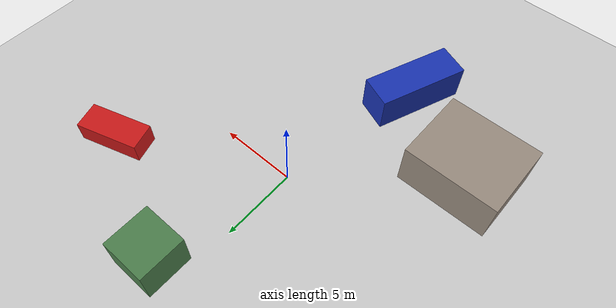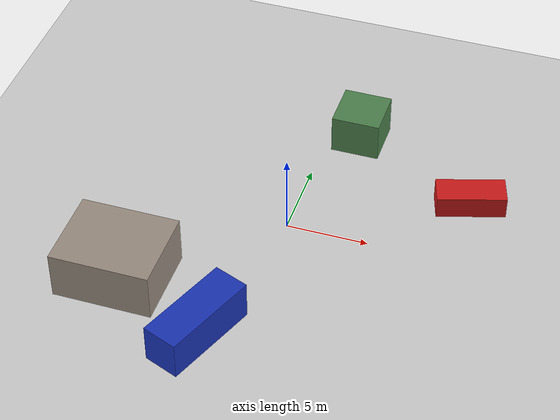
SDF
<sdf version="1.9">
 <world name="sage_sar">
  <physics type="ode">
   <max_step_size>0.004</max_step_size>
   <real_time_factor>1.0</real_time_factor>
   <real_time_update_rate>250</real_time_update_rate>
  </physics>
  <gravity>0 0 -9.8</gravity>
  <magnetic_field>6e-06 2.3e-05 -4.2e-05</magnetic_field>
  <atmosphere type="adiabatic"/>
  <scene>
   <grid>false</grid>
   <ambient>0.4 0.4 0.4 1</ambient>
   <background>0.7 0.7 0.7 1</background>
   <shadows>true</shadows>
  </scene>
  <model name="ground_plane">
   <static>true</static>
   <link name="link">
    <collision name="collision">
     <geometry><plane><normal>0 0 1</normal><size>1 1</size></plane></geometry>
    </collision>
    <visual name="visual">
     <geometry><plane><normal>0 0 1</normal><size>500 500</size></plane></geometry>
     <material>
      <ambient>0.8 0.8 0.8 1</ambient>
      <diffuse>0.8 0.8 0.8 1</diffuse>
      <specular>0.8 0.8 0.8 1</specular>
     </material>
    </visual>
    <inertial>
     <mass>1</mass>
     <inertia><ixx>1</ixx><ixy>0</ixy><ixz>0</ixz><iyy>1</iyy><iyz>0</iyz><izz>1</izz></inertia>
    </inertial>
   </link>
  </model>
  <light name="sunUTC" type="directional">
   <pose>0 0 500 0 -0 0</pose>
   <intensity>1</intensity>
   <direction>0.001 0.625 -0.78</direction>
   <diffuse>0.904 0.904 0.904 1</diffuse>
   <specular>0.271 0.271 0.271 1</specular>
   <attenuation><range>2000</range><linear>0</linear><constant>1</constant><quadratic>0</quadratic></attenuation>
   <spot><inner_angle>0</inner_angle><outer_angle>0</outer_angle><falloff>0</falloff></spot>
  </light>
  <spherical_coordinates>
   <surface_model>EARTH_WGS84</surface_model>
   <world_frame_orientation>ENU</world_frame_orientation>
   <latitude_deg>47.397971057728974</latitude_deg>
   <longitude_deg>8.546163739800146</longitude_deg>
   <elevation>0</elevation>
  </spherical_coordinates>
  <model name="house_1">
   <static>true</static>
   <pose>-8 -7 1.5 0 0 0</pose>
   <link name="l">
    <visual name="v">
     <geometry><box><size>6 5 3</size></box></geometry>
     <material><ambient>0.6 0.55 0.5 1</ambient><diffuse>0.6 0.55 0.5 1</diffuse></material>
    </visual>
   </link>
  </model>
  <model name="car_red">
   <static>true</static>
   <pose>10 5 0.7 0 0 0.3</pose>
   <link name="l">
    <visual name="v">
     <geometry><box><size>4.2 1.8 1.4</size></box></geometry>
     <material><ambient>0.8 0.1 0.1 1</ambient><diffuse>0.8 0.1 0.1 1</diffuse></material>
    </visual>
   </link>
  </model>
  <model name="truck_blue">
   <static>true</static>
   <pose>-2 -10 1.2 0 0 1.2</pose>
   <link name="l">
    <visual name="v">
     <geometry><box><size>6 2.2 2.4</size></box></geometry>
     <material><ambient>0.1 0.2 0.7 1</ambient><diffuse>0.1 0.2 0.7 1</diffuse></material>
    </visual>
   </link>
  </model>
  <model name="shed">
   <static>true</static>
   <pose>2 9 1.25 0 0 0</pose>
   <link name="l">
    <visual name="v">
     <geometry><box><size>3 3 2.5</size></box></geometry>
     <material><ambient>0.3 0.5 0.3 1</ambient><diffuse>0.3 0.5 0.3 1</diffuse></material>
    </visual>
   </link>
  </model>
 </world>
</sdf>
